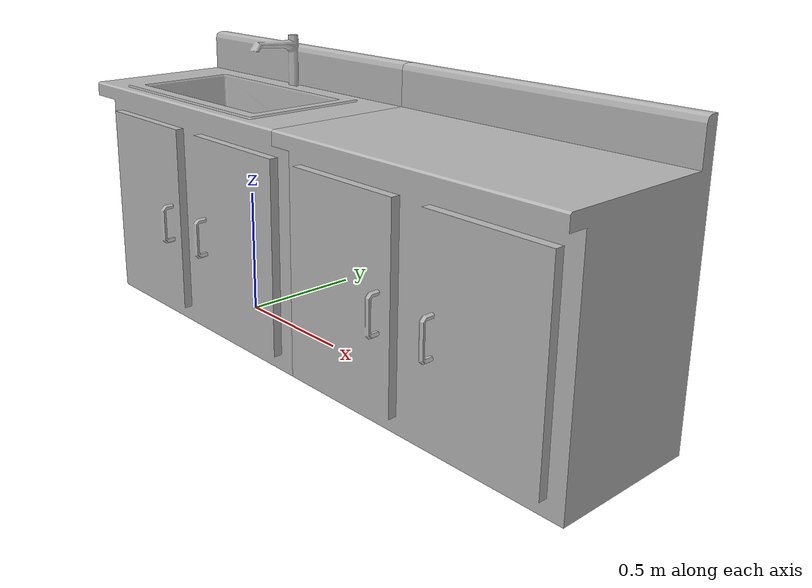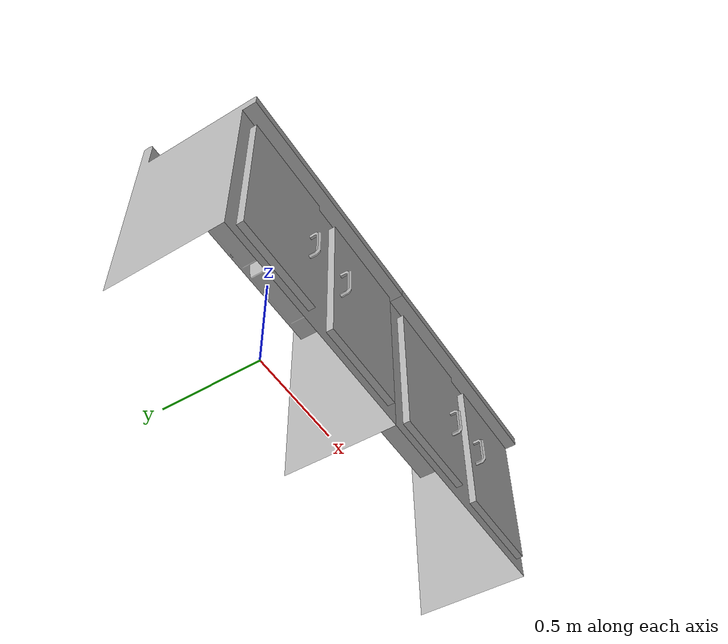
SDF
<?xml version="1.0" ?>
<sdf version="1.5">
  <model name="cafe_counter">
    <static>true</static>
    <link name="with_sink">
      <collision name="collision">
        <pose>0.598126 -0.024529 0.539205 0 0 0</pose>
        <geometry>
          <box>
            <size>2.424880 0.666320 1.078160</size>
          </box>
        </geometry>
      </collision>
      <visual name="visual">
        <geometry>
          <mesh>
            <uri>model://cafe_counter/meshes/counter_sink.obj</uri>
            <scale>0.01 0.01 0.01</scale>
          </mesh>
        </geometry>
      </visual>
    </link>
    <link name="no_sink">
      <pose>1.2 0 0 0 0 0</pose>
      <visual name="visual">
        <geometry>
          <mesh>
            <uri>model://cafe_counter/meshes/counter_no_sink.obj</uri>
            <scale>0.01 0.01 0.01</scale>
          </mesh>
        </geometry>
      </visual>
    </link>
  </model>
</sdf>
